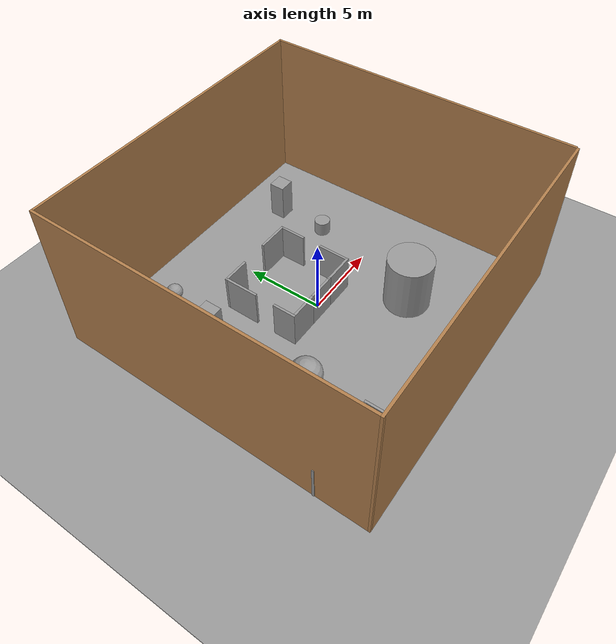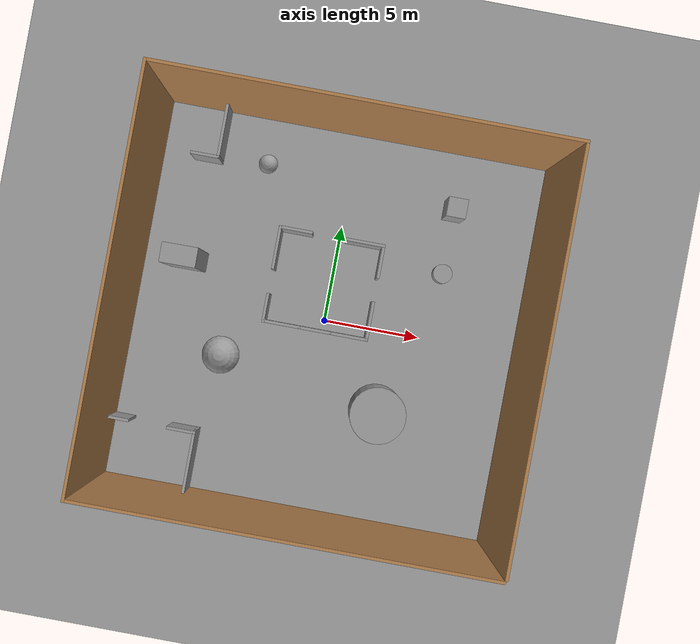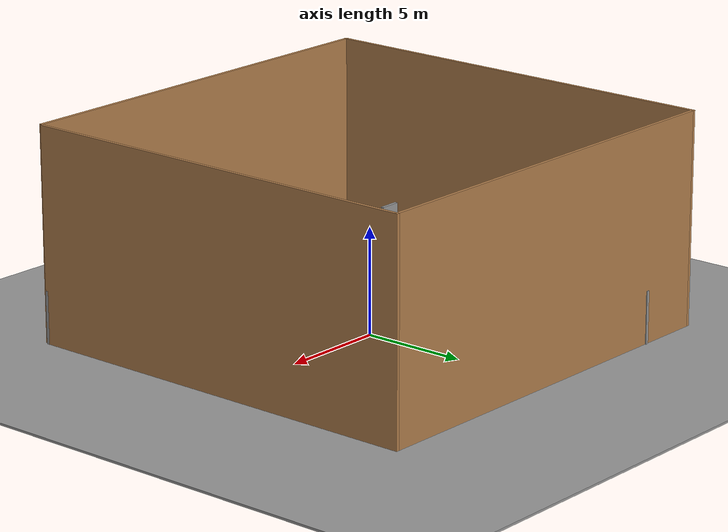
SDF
<sdf version="1.7">
 <world name="default">
  <light name="sun" type="directional">
   <pose>0 0 10 0 -0 0</pose>
   <diffuse>0.8 0.8 0.8 1</diffuse>
   <specular>0.2 0.2 0.2 1</specular>
   <attenuation>
    <range>1000</range>
    <constant>0.9</constant>
    <linear>0.01</linear>
    <quadratic>0.001</quadratic>
   </attenuation>
   <direction>-0.5 0.1 -0.9</direction>
   <spot><inner_angle>0</inner_angle><outer_angle>0</outer_angle><falloff>0</falloff></spot>
  </light>
  <model name="ground_plane">
   <static>1</static>
   <link name="link">
    <collision name="collision">
     <geometry><plane><normal>0 0 1</normal><size>100 100</size></plane></geometry>
     <surface><friction><ode><mu>100</mu><mu2>50</mu2></ode></friction></surface>
    </collision>
    <visual name="visual">
     <cast_shadows>0</cast_shadows>
     <geometry><plane><normal>0 0 1</normal><size>100 100</size></plane></geometry>
     <material>
      <script><uri>file://media/materials/scripts/gazebo.material</uri><name>Gazebo/Grey</name></script>
     </material>
    </visual>
   </link>
  </model>
  <gravity>0 0 -9.8</gravity>
  <magnetic_field>6e-06 2.3e-05 -4.2e-05</magnetic_field>
  <atmosphere type="adiabatic"/>
  <physics type="ode">
   <max_step_size>0.005</max_step_size>
   <real_time_factor>1</real_time_factor>
   <real_time_update_rate>1000</real_time_update_rate>
  </physics>
  <scene><ambient>0.4 0.4 0.4 1</ambient><background>0.7 0.7 0.7 1</background><shadows>1</shadows></scene>
  <spherical_coordinates>
   <surface_model>EARTH_WGS84</surface_model>
   <latitude_deg>0</latitude_deg>
   <longitude_deg>0</longitude_deg>
   <elevation>0</elevation>
   <heading_deg>0</heading_deg>
  </spherical_coordinates>
  <model name="ground_plane_0">
   <static>1</static>
   <link name="link">
    <collision name="collision">
     <geometry><plane><normal>0 0 1</normal><size>100 100</size></plane></geometry>
     <surface><friction><ode><mu>100</mu><mu2>50</mu2></ode></friction></surface>
    </collision>
    <visual name="visual">
     <cast_shadows>0</cast_shadows>
     <geometry><plane><normal>0 0 1</normal><size>100 100</size></plane></geometry>
     <material>
      <script><uri>file://media/materials/scripts/gazebo.material</uri><name>Gazebo/Grey</name></script>
     </material>
    </visual>
   </link>
   <pose>4.46962 1.05622 0 0 -0 0</pose>
  </model>
  <model name="Untitled">
   <pose>0.029093 0.021425 0 0 -0 0</pose>
   <link name="Wall_1">
    <collision name="Wall_1_Collision">
     <geometry><box><size>20.15 0.15 10</size></box></geometry>
     <pose>0 0 5 0 -0 0</pose>
    </collision>
    <visual name="Wall_1_Visual">
     <pose>0 0 5 0 -0 0</pose>
     <geometry><box><size>20.15 0.15 10</size></box></geometry>
     <material>
      <script><uri>file://media/materials/scripts/gazebo.material</uri><name>Gazebo/Wood</name></script>
      <ambient>0.996078 0.47451 0.0196078 1</ambient>
     </material>
     <meta><layer>0</layer></meta>
    </visual>
    <pose>-10.0291 -0.021425 0 0 -0 1.5708</pose>
   </link>
   <link name="Wall_10">
    <collision name="Wall_10_Collision">
     <geometry><box><size>1.5 0.15 2.5</size></box></geometry>
     <pose>0 0 1.25 0 -0 0</pose>
    </collision>
    <visual name="Wall_10_Visual">
     <pose>0 0 1.25 0 -0 0</pose>
     <geometry><box><size>1.5 0.15 2.5</size></box></geometry>
     <material>
      <script><uri>file://media/materials/scripts/gazebo.material</uri><name>Gazebo/Grey</name></script>
      <ambient>1 1 1 1</ambient>
     </material>
     <meta><layer>0</layer></meta>
    </visual>
    <pose>-7.55532 7.17143 0 0 -0 3.14159</pose>
   </link>
   <link name="Wall_13">
    <collision name="Wall_13_Collision">
     <geometry><box><size>1.25 0.15 2.5</size></box></geometry>
     <pose>0 0 1.25 0 -0 0</pose>
    </collision>
    <visual name="Wall_13_Visual">
     <pose>0 0 1.25 0 -0 0</pose>
     <geometry><box><size>1.25 0.15 2.5</size></box></geometry>
     <material>
      <script><uri>file://media/materials/scripts/gazebo.material</uri><name>Gazebo/Grey</name></script>
      <ambient>1 1 1 1</ambient>
     </material>
     <meta><layer>0</layer></meta>
    </visual>
    <pose>-9.52091 -6.81783 0 0 -0 0</pose>
   </link>
   <link name="Wall_15">
    <collision name="Wall_15_Collision">
     <geometry><box><size>1.5 0.15 2.5</size></box></geometry>
     <pose>0 0 1.25 0 -0 0</pose>
    </collision>
    <visual name="Wall_15_Visual">
     <pose>0 0 1.25 0 -0 0</pose>
     <geometry><box><size>1.5 0.15 2.5</size></box></geometry>
     <material>
      <script><uri>file://media/materials/scripts/gazebo.material</uri><name>Gazebo/Grey</name></script>
      <ambient>1 1 1 1</ambient>
     </material>
     <meta><layer>0</layer></meta>
    </visual>
    <pose>-6.19591 -6.81783 0 0 -0 0</pose>
   </link>
   <link name="Wall_16">
    <collision name="Wall_16_Collision">
     <geometry><box><size>3.25 0.15 2.5</size></box></geometry>
     <pose>0 0 1.25 0 -0 0</pose>
    </collision>
    <visual name="Wall_16_Visual">
     <pose>0 0 1.25 0 -0 0</pose>
     <geometry><box><size>3.25 0.15 2.5</size></box></geometry>
     <material>
      <script><uri>file://media/materials/scripts/gazebo.material</uri><name>Gazebo/Grey</name></script>
      <ambient>1 1 1 1</ambient>
     </material>
     <meta><layer>0</layer></meta>
    </visual>
    <pose>-5.52091 -8.36783 0 0 -0 -1.5708</pose>
   </link>
   <link name="Wall_26">
    <collision name="Wall_26_Collision">
     <geometry><box><size>2.25 0.15 2.5</size></box></geometry>
     <pose>0 0 1.25 0 -0 0</pose>
    </collision>
    <visual name="Wall_26_Visual">
     <pose>0 0 1.25 0 -0 0</pose>
     <geometry><box><size>2.25 0.15 2.5</size></box></geometry>
     <material>
      <script><uri>file://media/materials/scripts/gazebo.material</uri><name>Gazebo/Grey</name></script>
      <ambient>1 1 1 1</ambient>
     </material>
     <meta><layer>0</layer></meta>
    </visual>
    <pose>-3.11255 3.217 0 0 -0 -1.5708</pose>
   </link>
   <link name="Wall_28">
    <collision name="Wall_28_Collision">
     <geometry><box><size>1.5 0.15 2.5</size></box></geometry>
     <pose>0 0 1.25 0 -0 0</pose>
    </collision>
    <visual name="Wall_28_Visual">
     <pose>0 0 1.25 0 -0 0</pose>
     <geometry><box><size>1.5 0.15 2.5</size></box></geometry>
     <material>
      <script><uri>file://media/materials/scripts/gazebo.material</uri><name>Gazebo/Grey</name></script>
      <ambient>1 1 1 1</ambient>
     </material>
     <meta><layer>0</layer></meta>
    </visual>
    <pose>-3.11255 0.092003 0 0 -0 -1.5708</pose>
   </link>
   <link name="Wall_3">
    <collision name="Wall_3_Collision">
     <geometry><box><size>20.15 0.15 10</size></box></geometry>
     <pose>0 0 5 0 -0 0</pose>
    </collision>
    <visual name="Wall_3_Visual">
     <pose>0 0 5 0 -0 0</pose>
     <geometry><box><size>20.15 0.15 10</size></box></geometry>
     <material>
      <script><uri>file://media/materials/scripts/gazebo.material</uri><name>Gazebo/Wood</name></script>
      <ambient>0.921569 0.807843 0.615686 1</ambient>
     </material>
     <meta><layer>0</layer></meta>
    </visual>
    <pose>-0.029093 -10.0214 0 0 -0 0</pose>
   </link>
   <link name="Wall_30">
    <collision name="Wall_30_Collision">
     <geometry><box><size>2 0.15 2.5</size></box></geometry>
     <pose>0 0 1.25 0 -0 0</pose>
    </collision>
    <visual name="Wall_30_Visual">
     <pose>0 0 1.25 0 -0 0</pose>
     <geometry><box><size>2 0.15 2.5</size></box></geometry>
     <material>
      <script><uri>file://media/materials/scripts/gazebo.material</uri><name>Gazebo/Grey</name></script>
      <ambient>1 1 1 1</ambient>
     </material>
     <meta><layer>0</layer></meta>
    </visual>
    <pose>-2.18755 -0.582997 0 0 -0 0</pose>
   </link>
   <link name="Wall_31">
    <collision name="Wall_31_Collision">
     <geometry><box><size>1.75 0.15 2.5</size></box></geometry>
     <pose>0 0 1.25 0 -0 0</pose>
    </collision>
    <visual name="Wall_31_Visual">
     <pose>0 0 1.25 0 -0 0</pose>
     <geometry><box><size>1.75 0.15 2.5</size></box></geometry>
     <material>
      <script><uri>file://media/materials/scripts/gazebo.material</uri><name>Gazebo/Grey</name></script>
      <ambient>1 1 1 1</ambient>
     </material>
     <meta><layer>0</layer></meta>
    </visual>
    <pose>-0.462549 -0.582997 0 0 -0 0</pose>
   </link>
   <link name="Wall_32">
    <collision name="Wall_32_Collision">
     <geometry><box><size>2.05 0.15 2.5</size></box></geometry>
     <pose>0 0 1.25 0 -0 0</pose>
    </collision>
    <visual name="Wall_32_Visual">
     <pose>0 0 1.25 0 -0 0</pose>
     <geometry><box><size>2.05 0.15 2.5</size></box></geometry>
     <material>
      <script><uri>file://media/materials/scripts/gazebo.material</uri><name>Gazebo/Grey</name></script>
      <ambient>1 1 1 1</ambient>
     </material>
     <meta><layer>0</layer></meta>
    </visual>
    <pose>1.28745 -0.582997 0 0 -0 0</pose>
   </link>
   <link name="Wall_34">
    <collision name="Wall_34_Collision">
     <geometry><box><size>1.75 0.15 2.5</size></box></geometry>
     <pose>0 0 1.25 0 -0 0</pose>
    </collision>
    <visual name="Wall_34_Visual">
     <pose>0 0 1.25 0 -0 0</pose>
     <geometry><box><size>1.75 0.15 2.5</size></box></geometry>
     <material>
      <script><uri>file://media/materials/scripts/gazebo.material</uri><name>Gazebo/Grey</name></script>
      <ambient>1 1 1 1</ambient>
     </material>
     <meta><layer>0</layer></meta>
    </visual>
    <pose>-2.31255 4.267 0 0 -0 0</pose>
   </link>
   <link name="Wall_36">
    <collision name="Wall_36_Collision">
     <geometry><box><size>2.05 0.15 2.5</size></box></geometry>
     <pose>0 0 1.25 0 -0 0</pose>
    </collision>
    <visual name="Wall_36_Visual">
     <pose>0 0 1.25 0 -0 0</pose>
     <geometry><box><size>2.05 0.15 2.5</size></box></geometry>
     <material>
      <script><uri>file://media/materials/scripts/gazebo.material</uri><name>Gazebo/Grey</name></script>
      <ambient>1 1 1 1</ambient>
     </material>
     <meta><layer>0</layer></meta>
    </visual>
    <pose>1.28745 4.267 0 0 -0 0</pose>
   </link>
   <link name="Wall_38">
    <collision name="Wall_38_Collision">
     <geometry><box><size>1.75 0.15 2.5</size></box></geometry>
     <pose>0 0 1.25 0 -0 0</pose>
    </collision>
    <visual name="Wall_38_Visual">
     <pose>0 0 1.25 0 -0 0</pose>
     <geometry><box><size>1.75 0.15 2.5</size></box></geometry>
     <material>
      <script><uri>file://media/materials/scripts/gazebo.material</uri><name>Gazebo/Grey</name></script>
      <ambient>1 1 1 1</ambient>
     </material>
     <meta><layer>0</layer></meta>
    </visual>
    <pose>2.23745 3.467 0 0 -0 -1.5708</pose>
   </link>
   <link name="Wall_40">
    <collision name="Wall_40_Collision">
     <geometry><box><size>2.05 0.15 2.5</size></box></geometry>
     <pose>0 0 1.25 0 -0 0</pose>
    </collision>
    <visual name="Wall_40_Visual">
     <pose>0 0 1.25 0 -0 0</pose>
     <geometry><box><size>2.05 0.15 2.5</size></box></geometry>
     <material>
      <script><uri>file://media/materials/scripts/gazebo.material</uri><name>Gazebo/Grey</name></script>
      <ambient>1 1 1 1</ambient>
     </material>
     <meta><layer>0</layer></meta>
    </visual>
    <pose>2.23745 0.367003 0 0 -0 -1.5708</pose>
   </link>
   <link name="Wall_5">
    <collision name="Wall_5_Collision">
     <geometry><box><size>20.25 0.15 10</size></box></geometry>
     <pose>0 0 5 0 -0 0</pose>
    </collision>
    <visual name="Wall_5_Visual">
     <pose>0 0 5 0 -0 0</pose>
     <geometry><box><size>20.25 0.15 10</size></box></geometry>
     <material>
      <script><uri>file://media/materials/scripts/gazebo.material</uri><name>Gazebo/Wood</name></script>
      <ambient>1 1 1 1</ambient>
     </material>
     <meta><layer>0</layer></meta>
    </visual>
    <pose>0.020907 9.97857 0 0 -0 0</pose>
   </link>
   <link name="Wall_6">
    <collision name="Wall_6_Collision">
     <geometry><box><size>20 0.15 10</size></box></geometry>
     <pose>0 0 5 0 -0 0</pose>
    </collision>
    <visual name="Wall_6_Visual">
     <pose>0 0 5 0 -0 0</pose>
     <geometry><box><size>20 0.15 10</size></box></geometry>
     <material>
      <script><uri>file://media/materials/scripts/gazebo.material</uri><name>Gazebo/Wood</name></script>
      <ambient>1 0.764706 0.305882 1</ambient>
     </material>
     <meta><layer>0</layer></meta>
    </visual>
    <pose>10.0709 0.053575 0 0 -0 -1.5708</pose>
   </link>
   <link name="Wall_7">
    <collision name="Wall_7_Collision">
     <geometry><box><size>0.15 0.15 2.5</size></box></geometry>
     <pose>0 0 1.25 0 -0 0</pose>
    </collision>
    <visual name="Wall_7_Visual">
     <pose>0 0 1.25 0 -0 0</pose>
     <geometry><box><size>0.15 0.15 2.5</size></box></geometry>
     <material>
      <script><uri>file://media/materials/scripts/gazebo.material</uri><name>Gazebo/Grey</name></script>
      <ambient>1 1 1 1</ambient>
     </material>
     <meta><layer>0</layer></meta>
    </visual>
    <pose>10.0709 -9.87143 0 0 -0 0</pose>
   </link>
   <link name="Wall_9">
    <collision name="Wall_9_Collision">
     <geometry><box><size>3 0.15 2.5</size></box></geometry>
     <pose>0 0 1.25 0 -0 0</pose>
    </collision>
    <visual name="Wall_9_Visual">
     <pose>0 0 1.25 0 -0 0</pose>
     <geometry><box><size>3 0.15 2.5</size></box></geometry>
     <material>
      <script><uri>file://media/materials/scripts/gazebo.material</uri><name>Gazebo/Grey</name></script>
      <ambient>1 1 1 1</ambient>
     </material>
     <meta><layer>0</layer></meta>
    </visual>
    <pose>-6.88032 8.59643 0 0 -0 -1.5708</pose>
   </link>
   <static>1</static>
  </model>
  <model name="unit_box">
   <pose>-7.55423 1.85646 2.62595 3e-06 -1.4e-05 0.006811</pose>
   <link name="link">
    <inertial>
     <mass>1</mass>
     <inertia>
      <ixx>0.166667</ixx>
      <ixy>0</ixy>
      <ixz>0</ixz>
      <iyy>0.166667</iyy>
      <iyz>0</iyz>
      <izz>0.166667</izz>
     </inertia>
    </inertial>
    <collision name="collision"><geometry><box><size>1.80085 1 5.25191</size></box></geometry></collision>
    <visual name="visual">
     <geometry><box><size>1.80085 1 5.25191</size></box></geometry>
     <material>
      <script><name>Gazebo/Grey</name><uri>file://media/materials/scripts/gazebo.material</uri></script>
     </material>
    </visual>
   </link>
  </model>
  <model name="unit_sphere">
   <pose>-5.00249 -2.71576 0.983365 0 -0 0</pose>
   <link name="link">
    <inertial>
     <mass>1</mass>
     <inertia><ixx>0.1</ixx><ixy>0</ixy><ixz>0</ixz><iyy>0.1</iyy><iyz>0</iyz><izz>0.1</izz></inertia>
    </inertial>
    <collision name="collision"><geometry><sphere><radius>0.98356</radius></sphere></geometry></collision>
    <visual name="visual">
     <geometry><sphere><radius>0.98356</radius></sphere></geometry>
     <material>
      <script><name>Gazebo/Grey</name><uri>file://media/materials/scripts/gazebo.material</uri></script>
     </material>
    </visual>
   </link>
  </model>
  <model name="unit_cylinder">
   <pose>3.48156 -4.17776 1.79148 3e-06 1e-06 2.7e-05</pose>
   <link name="link">
    <inertial>
     <mass>1</mass>
     <inertia><ixx>0.145833</ixx><ixy>0</ixy><ixz>0</ixz><iyy>0.145833</iyy><iyz>0</iyz><izz>0.125</izz></inertia>
    </inertial>
    <collision name="collision">
     <geometry><cylinder><radius>1.42585</radius><length>3.58335</length></cylinder></geometry>
    </collision>
    <visual name="visual">
     <geometry><cylinder><radius>1.42585</radius><length>3.58335</length></cylinder></geometry>
     <material>
      <script><name>Gazebo/Grey</name><uri>file://media/materials/scripts/gazebo.material</uri></script>
     </material>
    </visual>
   </link>
  </model>
  <model name="unit_cylinder_0">
   <pose>5.59863 3.53215 0.499805 -0 -0 -0</pose>
   <link name="link">
    <inertial>
     <mass>1</mass>
     <inertia><ixx>0.145833</ixx><ixy>0</ixy><ixz>0</ixz><iyy>0.145833</iyy><iyz>0</iyz><izz>0.125</izz></inertia>
    </inertial>
    <collision name="collision">
     <geometry><cylinder><radius>0.5</radius><length>1</length></cylinder></geometry>
    </collision>
    <visual name="visual">
     <geometry><cylinder><radius>0.5</radius><length>1</length></cylinder></geometry>
     <material>
      <script><name>Gazebo/Grey</name><uri>file://media/materials/scripts/gazebo.material</uri></script>
     </material>
    </visual>
   </link>
  </model>
  <model name="unit_box_0">
   <pose>5.58233 6.87581 1.29866 -3.7e-05 -1.9e-05 2.9e-05</pose>
   <link name="link">
    <inertial>
     <mass>1</mass>
     <inertia>
      <ixx>0.166667</ixx>
      <ixy>0</ixy>
      <ixz>0</ixz>
      <iyy>0.166667</iyy>
      <iyz>0</iyz>
      <izz>0.166667</izz>
     </inertia>
    </inertial>
    <collision name="collision"><geometry><box><size>1 1 2.59735</size></box></geometry></collision>
    <visual name="visual">
     <geometry><box><size>1 1 2.59735</size></box></geometry>
     <material>
      <script><name>Gazebo/Grey</name><uri>file://media/materials/scripts/gazebo.material</uri></script>
     </material>
    </visual>
   </link>
  </model>
  <model name="unit_sphere_0">
   <pose>-4.40335 7.54232 0.499805 0 -0 0</pose>
   <link name="link">
    <inertial>
     <mass>1</mass>
     <inertia><ixx>0.1</ixx><ixy>0</ixy><ixz>0</ixz><iyy>0.1</iyy><iyz>0</iyz><izz>0.1</izz></inertia>
    </inertial>
    <collision name="collision"><geometry><sphere><radius>0.5</radius></sphere></geometry></collision>
    <visual name="visual">
     <geometry><sphere><radius>0.5</radius></sphere></geometry>
     <material>
      <script><name>Gazebo/Grey</name><uri>file://media/materials/scripts/gazebo.material</uri></script>
     </material>
    </visual>
   </link>
  </model>
 </world>
</sdf>
